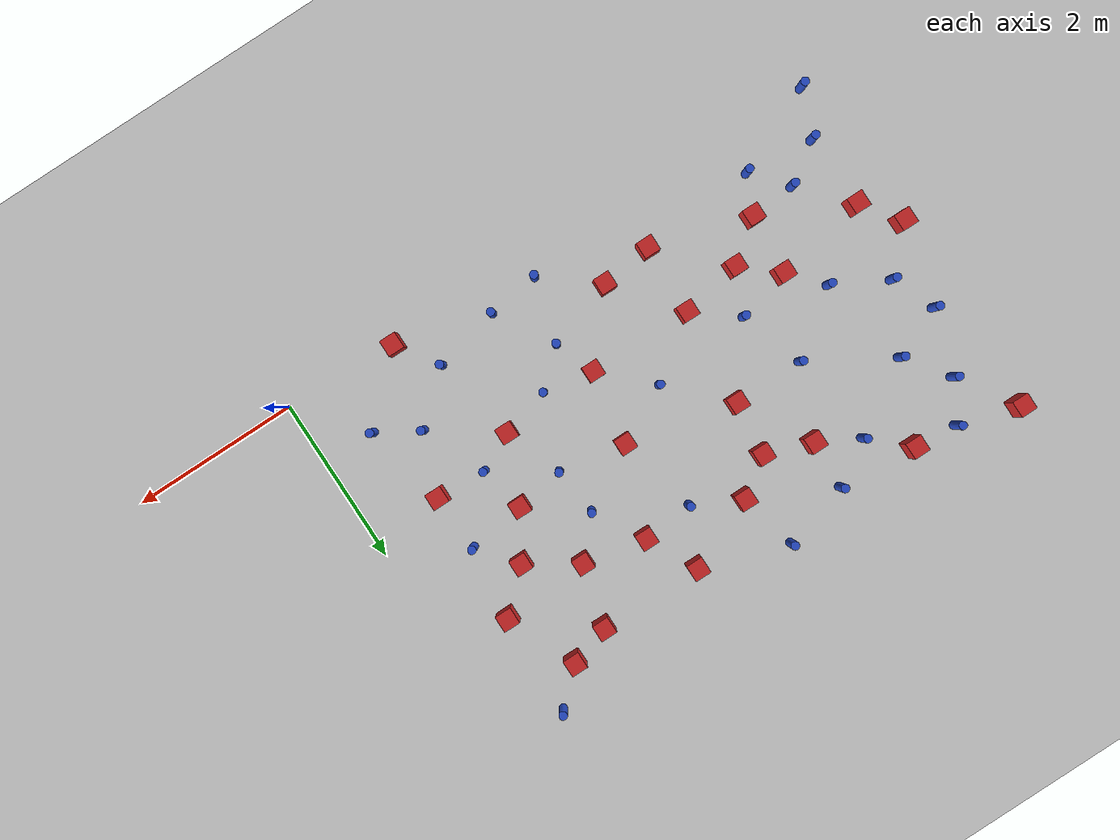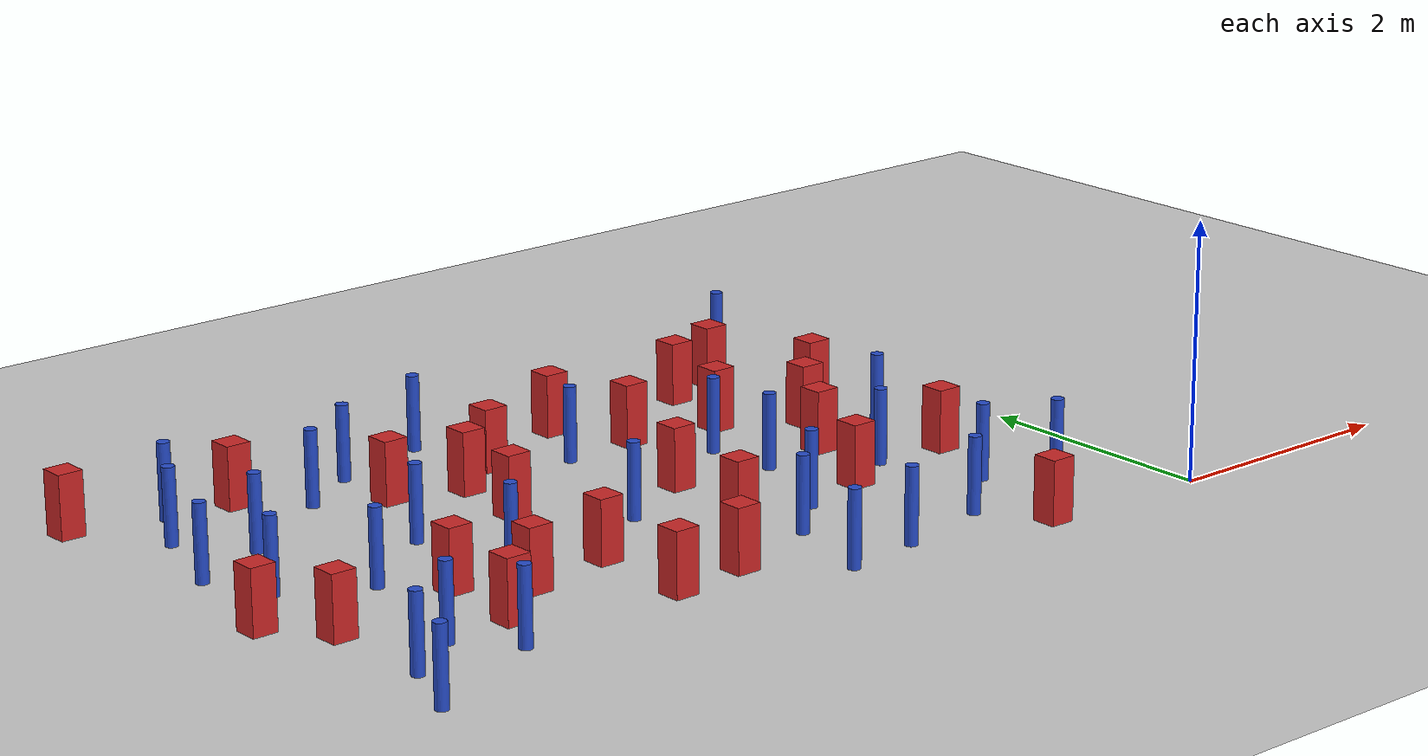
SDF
<sdf version="1.6">
 <world name="default">
  <model name="ground_plane">
   <static>1</static>
   <link name="link">
    <collision name="collision">
     <geometry><plane><normal>0 0 1</normal><size>100 100</size></plane></geometry>
     <surface><friction><ode><mu>100</mu><mu2>50</mu2></ode></friction></surface>
    </collision>
    <visual name="visual">
     <cast_shadows>0</cast_shadows>
     <geometry><plane><normal>0 0 1</normal><size>100 100</size></plane></geometry>
     <material>
      <ambient>1.0 1.0 1.0 1.0</ambient>
      <diffuse>0.8 0.8 0.8 1.0</diffuse>
      <specular>0.01 0.01 0.01 1.000000</specular>
     </material>
    </visual>
   </link>
  </model>
  <model name="pole_obstacle2">
   <static>true</static>
   <pose>-5.77807198783 0.60570814513 7.38925637345e-09 -8.47170692799e-08 1.24976765038e-08 -1.74513093018e-07</pose>
   <link name="link">
    <pose>0 0 0.3 0 -0 0</pose>
    <inertial>
     <mass>1</mass>
     <inertia><ixx>0.145833</ixx><ixy>0</ixy><ixz>0</ixz><iyy>0.145833</iyy><iyz>0</iyz><izz>0.125</izz></inertia>
    </inertial>
    <collision name="collision">
     <geometry><cylinder><radius>0.05</radius><length>.6</length></cylinder></geometry>
    </collision>
    <visual name="visual">
     <geometry><cylinder><radius>0.05</radius><length>.6</length></cylinder></geometry>
     <material>
      <script><name>Gazebo/Blue</name><uri>file://media/materials/scripts/gazebo.material</uri></script>
     </material>
    </visual>
   </link>
  </model>
  <model name="pole_obstacle5">
   <static>true</static>
   <pose>-6.08765010966 3.29022530019 7.38925637345e-09 -8.47170692798e-08 1.24976764937e-08 -1.74513093023e-07</pose>
   <link name="link">
    <pose>0 0 0.3 0 -0 0</pose>
    <inertial>
     <mass>1</mass>
     <inertia><ixx>0.145833</ixx><ixy>0</ixy><ixz>0</ixz><iyy>0.145833</iyy><iyz>0</iyz><izz>0.125</izz></inertia>
    </inertial>
    <collision name="collision">
     <geometry><cylinder><radius>0.05</radius><length>.6</length></cylinder></geometry>
    </collision>
    <visual name="visual">
     <geometry><cylinder><radius>0.05</radius><length>.6</length></cylinder></geometry>
     <material>
      <script><name>Gazebo/Blue</name><uri>file://media/materials/scripts/gazebo.material</uri></script>
     </material>
    </visual>
   </link>
  </model>
  <model name="square_post_obstacle6">
   <static>true</static>
   <pose>-6.60543335553 1.57570424143 1.91545236811e-07 -7.35059704564e-06 1.12565212e-07 2.39332434364e-05</pose>
   <link name="link">
    <pose>0 0 0.25 0 -0 0</pose>
    <inertial>
     <mass>100</mass>
     <inertia>
      <ixx>0.166667</ixx>
      <ixy>0</ixy>
      <ixz>0</ixz>
      <iyy>0.166667</iyy>
      <iyz>0</iyz>
      <izz>0.166667</izz>
     </inertia>
    </inertial>
    <collision name="collision"><geometry><box><size>.2 .2 .5</size></box></geometry></collision>
    <visual name="visual">
     <geometry><box><size>.2 .2 .5</size></box></geometry>
     <material>
      <script><name>Gazebo/Red</name><uri>file://media/materials/scripts/gazebo.material</uri></script>
     </material>
    </visual>
   </link>
  </model>
  <model name="square_post_obstacle7">
   <static>true</static>
   <pose>-5.49763663436 1.77760166691 1.91545236811e-07 -7.35059704564e-06 1.12565212e-07 2.39332434364e-05</pose>
   <link name="link">
    <pose>0 0 0.25 0 -0 0</pose>
    <inertial>
     <mass>100</mass>
     <inertia>
      <ixx>0.166667</ixx>
      <ixy>0</ixy>
      <ixz>0</ixz>
      <iyy>0.166667</iyy>
      <iyz>0</iyz>
      <izz>0.166667</izz>
     </inertia>
    </inertial>
    <collision name="collision"><geometry><box><size>.2 .2 .5</size></box></geometry></collision>
    <visual name="visual">
     <geometry><box><size>.2 .2 .5</size></box></geometry>
     <material>
      <script><name>Gazebo/Red</name><uri>file://media/materials/scripts/gazebo.material</uri></script>
     </material>
    </visual>
   </link>
  </model>
  <model name="square_post_obstacle14">
   <static>true</static>
   <pose>-1.38984037299 0.0658818609446 1.91545236811e-07 -7.35059704564e-06 1.12565212e-07 2.39332434364e-05</pose>
   <link name="link">
    <pose>0 0 0.25 0 -0 0</pose>
    <inertial>
     <mass>100</mass>
     <inertia>
      <ixx>0.166667</ixx>
      <ixy>0</ixy>
      <ixz>0</ixz>
      <iyy>0.166667</iyy>
      <iyz>0</iyz>
      <izz>0.166667</izz>
     </inertia>
    </inertial>
    <collision name="collision"><geometry><box><size>.2 .2 .5</size></box></geometry></collision>
    <visual name="visual">
     <geometry><box><size>.2 .2 .5</size></box></geometry>
     <material>
      <script><name>Gazebo/Red</name><uri>file://media/materials/scripts/gazebo.material</uri></script>
     </material>
    </visual>
   </link>
  </model>
  <model name="pole_obstacle19">
   <static>true</static>
   <pose>-0.739754047334 4.5538869779 7.38925637345e-09 -8.471706928e-08 1.24976765086e-08 -1.74513093015e-07</pose>
   <link name="link">
    <pose>0 0 0.3 0 -0 0</pose>
    <inertial>
     <mass>1</mass>
     <inertia><ixx>0.145833</ixx><ixy>0</ixy><ixz>0</ixz><iyy>0.145833</iyy><iyz>0</iyz><izz>0.125</izz></inertia>
    </inertial>
    <collision name="collision">
     <geometry><cylinder><radius>0.05</radius><length>.6</length></cylinder></geometry>
    </collision>
    <visual name="visual">
     <geometry><cylinder><radius>0.05</radius><length>.6</length></cylinder></geometry>
     <material>
      <script><name>Gazebo/Blue</name><uri>file://media/materials/scripts/gazebo.material</uri></script>
     </material>
    </visual>
   </link>
  </model>
  <model name="pole_obstacle22">
   <static>true</static>
   <pose>-2.50910660701 0.369215138219 7.38925637345e-09 -8.471706928e-08 1.24976765172e-08 -1.74513093013e-07</pose>
   <link name="link">
    <pose>0 0 0.3 0 -0 0</pose>
    <inertial>
     <mass>1</mass>
     <inertia><ixx>0.145833</ixx><ixy>0</ixy><ixz>0</ixz><iyy>0.145833</iyy><iyz>0</iyz><izz>0.125</izz></inertia>
    </inertial>
    <collision name="collision">
     <geometry><cylinder><radius>0.05</radius><length>.6</length></cylinder></geometry>
    </collision>
    <visual name="visual">
     <geometry><cylinder><radius>0.05</radius><length>.6</length></cylinder></geometry>
     <material>
      <script><name>Gazebo/Blue</name><uri>file://media/materials/scripts/gazebo.material</uri></script>
     </material>
    </visual>
   </link>
  </model>
  <model name="square_post_obstacle26">
   <static>true</static>
   <pose>-4.35366112073 1.55228933744 1.91545236811e-07 -7.35059704564e-06 1.12565212e-07 2.39332434364e-05</pose>
   <link name="link">
    <pose>0 0 0.25 0 -0 0</pose>
    <inertial>
     <mass>100</mass>
     <inertia>
      <ixx>0.166667</ixx>
      <ixy>0</ixy>
      <ixz>0</ixz>
      <iyy>0.166667</iyy>
      <iyz>0</iyz>
      <izz>0.166667</izz>
     </inertia>
    </inertial>
    <collision name="collision"><geometry><box><size>.2 .2 .5</size></box></geometry></collision>
    <visual name="visual">
     <geometry><box><size>.2 .2 .5</size></box></geometry>
     <material>
      <script><name>Gazebo/Red</name><uri>file://media/materials/scripts/gazebo.material</uri></script>
     </material>
    </visual>
   </link>
  </model>
  <model name="pole_obstacle42">
   <static>true</static>
   <pose>-1.46862716438 1.8106235944 7.38925637345e-09 -8.471706928e-08 1.24976765079e-08 -1.74513093017e-07</pose>
   <link name="link">
    <pose>0 0 0.3 0 -0 0</pose>
    <inertial>
     <mass>1</mass>
     <inertia><ixx>0.145833</ixx><ixy>0</ixy><ixz>0</ixz><iyy>0.145833</iyy><iyz>0</iyz><izz>0.125</izz></inertia>
    </inertial>
    <collision name="collision">
     <geometry><cylinder><radius>0.05</radius><length>.6</length></cylinder></geometry>
    </collision>
    <visual name="visual">
     <geometry><cylinder><radius>0.05</radius><length>.6</length></cylinder></geometry>
     <material>
      <script><name>Gazebo/Blue</name><uri>file://media/materials/scripts/gazebo.material</uri></script>
     </material>
    </visual>
   </link>
  </model>
  <model name="square_post_obstacle32">
   <static>true</static>
   <pose>-2.96354630982 2.41492185534 1.91545236811e-07 -7.35059704564e-06 1.12565212e-07 2.39332434364e-05</pose>
   <link name="link">
    <pose>0 0 0.25 0 -0 0</pose>
    <inertial>
     <mass>100</mass>
     <inertia>
      <ixx>0.166667</ixx>
      <ixy>0</ixy>
      <ixz>0</ixz>
      <iyy>0.166667</iyy>
      <iyz>0</iyz>
      <izz>0.166667</izz>
     </inertia>
    </inertial>
    <collision name="collision"><geometry><box><size>.2 .2 .5</size></box></geometry></collision>
    <visual name="visual">
     <geometry><box><size>.2 .2 .5</size></box></geometry>
     <material>
      <script><name>Gazebo/Red</name><uri>file://media/materials/scripts/gazebo.material</uri></script>
     </material>
    </visual>
   </link>
  </model>
  <model name="square_post_obstacle36">
   <static>true</static>
   <pose>-1.92101219446 1.59004297579 1.91545236811e-07 -7.35059704564e-06 1.12565212e-07 2.39332434364e-05</pose>
   <link name="link">
    <pose>0 0 0.25 0 -0 0</pose>
    <inertial>
     <mass>100</mass>
     <inertia>
      <ixx>0.166667</ixx>
      <ixy>0</ixy>
      <ixz>0</ixz>
      <iyy>0.166667</iyy>
      <iyz>0</iyz>
      <izz>0.166667</izz>
     </inertia>
    </inertial>
    <collision name="collision"><geometry><box><size>.2 .2 .5</size></box></geometry></collision>
    <visual name="visual">
     <geometry><box><size>.2 .2 .5</size></box></geometry>
     <material>
      <script><name>Gazebo/Red</name><uri>file://media/materials/scripts/gazebo.material</uri></script>
     </material>
    </visual>
   </link>
  </model>
  <model name="pole_obstacle56">
   <static>true</static>
   <pose>-3.64869601761 2.07074282816 7.38925637345e-09 -8.471706928e-08 1.24976765098e-08 -1.74513093016e-07</pose>
   <link name="link">
    <pose>0 0 0.3 0 -0 0</pose>
    <inertial>
     <mass>1</mass>
     <inertia><ixx>0.145833</ixx><ixy>0</ixy><ixz>0</ixz><iyy>0.145833</iyy><iyz>0</iyz><izz>0.125</izz></inertia>
    </inertial>
    <collision name="collision">
     <geometry><cylinder><radius>0.05</radius><length>.6</length></cylinder></geometry>
    </collision>
    <visual name="visual">
     <geometry><cylinder><radius>0.05</radius><length>.6</length></cylinder></geometry>
     <material>
      <script><name>Gazebo/Blue</name><uri>file://media/materials/scripts/gazebo.material</uri></script>
     </material>
    </visual>
   </link>
  </model>
  <model name="square_post_obstacle50">
   <static>true</static>
   <pose>-0.792399169564 3.33805368329 1.91545236811e-07 -7.35059704564e-06 1.12565212e-07 2.39332434364e-05</pose>
   <link name="link">
    <pose>0 0 0.25 0 -0 0</pose>
    <inertial>
     <mass>100</mass>
     <inertia>
      <ixx>0.166667</ixx>
      <ixy>0</ixy>
      <ixz>0</ixz>
      <iyy>0.166667</iyy>
      <iyz>0</iyz>
      <izz>0.166667</izz>
     </inertia>
    </inertial>
    <collision name="collision"><geometry><box><size>.2 .2 .5</size></box></geometry></collision>
    <visual name="visual">
     <geometry><box><size>.2 .2 .5</size></box></geometry>
     <material>
      <script><name>Gazebo/Red</name><uri>file://media/materials/scripts/gazebo.material</uri></script>
     </material>
    </visual>
   </link>
  </model>
  <model name="square_post_obstacle53">
   <static>true</static>
   <pose>-4.26588855383 2.71386507238 1.91545236811e-07 -7.35059704564e-06 1.12565212e-07 2.39332434364e-05</pose>
   <link name="link">
    <pose>0 0 0.25 0 -0 0</pose>
    <inertial>
     <mass>100</mass>
     <inertia>
      <ixx>0.166667</ixx>
      <ixy>0</ixy>
      <ixz>0</ixz>
      <iyy>0.166667</iyy>
      <iyz>0</iyz>
      <izz>0.166667</izz>
     </inertia>
    </inertial>
    <collision name="collision"><geometry><box><size>.2 .2 .5</size></box></geometry></collision>
    <visual name="visual">
     <geometry><box><size>.2 .2 .5</size></box></geometry>
     <material>
      <script><name>Gazebo/Red</name><uri>file://media/materials/scripts/gazebo.material</uri></script>
     </material>
    </visual>
   </link>
  </model>
  <model name="pole_obstacle70">
   <static>true</static>
   <pose>-3.13428237372 0.285618210002 7.38925637345e-09 -8.47170692795e-08 1.24976764757e-08 -1.74513093037e-07</pose>
   <link name="link">
    <pose>0 0 0.3 0 -0 0</pose>
    <inertial>
     <mass>1</mass>
     <inertia><ixx>0.145833</ixx><ixy>0</ixy><ixz>0</ixz><iyy>0.145833</iyy><iyz>0</iyz><izz>0.125</izz></inertia>
    </inertial>
    <collision name="collision">
     <geometry><cylinder><radius>0.05</radius><length>.6</length></cylinder></geometry>
    </collision>
    <visual name="visual">
     <geometry><cylinder><radius>0.05</radius><length>.6</length></cylinder></geometry>
     <material>
      <script><name>Gazebo/Blue</name><uri>file://media/materials/scripts/gazebo.material</uri></script>
     </material>
    </visual>
   </link>
  </model>
  <model name="pole_obstacle73">
   <static>true</static>
   <pose>-6.59530736487 0.691565759097 7.38925637345e-09 -8.47170692799e-08 1.24976765038e-08 -1.74513093018e-07</pose>
   <link name="link">
    <pose>0 0 0.3 0 -0 0</pose>
    <inertial>
     <mass>1</mass>
     <inertia><ixx>0.145833</ixx><ixy>0</ixy><ixz>0</ixz><iyy>0.145833</iyy><iyz>0</iyz><izz>0.125</izz></inertia>
    </inertial>
    <collision name="collision">
     <geometry><cylinder><radius>0.05</radius><length>.6</length></cylinder></geometry>
    </collision>
    <visual name="visual">
     <geometry><cylinder><radius>0.05</radius><length>.6</length></cylinder></geometry>
     <material>
      <script><name>Gazebo/Blue</name><uri>file://media/materials/scripts/gazebo.material</uri></script>
     </material>
    </visual>
   </link>
  </model>
  <model name="square_post_obstacle64">
   <static>true</static>
   <pose>-5.66660402705 4.21801074426 1.91545236811e-07 -7.35059704564e-06 1.12565212e-07 2.39332434364e-05</pose>
   <link name="link">
    <pose>0 0 0.25 0 -0 0</pose>
    <inertial>
     <mass>100</mass>
     <inertia>
      <ixx>0.166667</ixx>
      <ixy>0</ixy>
      <ixz>0</ixz>
      <iyy>0.166667</iyy>
      <iyz>0</iyz>
      <izz>0.166667</izz>
     </inertia>
    </inertial>
    <collision name="collision"><geometry><box><size>.2 .2 .5</size></box></geometry></collision>
    <visual name="visual">
     <geometry><box><size>.2 .2 .5</size></box></geometry>
     <material>
      <script><name>Gazebo/Red</name><uri>file://media/materials/scripts/gazebo.material</uri></script>
     </material>
    </visual>
   </link>
  </model>
  <model name="pole_obstacle84">
   <static>true</static>
   <pose>-3.18942020828 3.38870784038 7.38925637345e-09 -8.47170692798e-08 1.24976764939e-08 -1.74513093025e-07</pose>
   <link name="link">
    <pose>0 0 0.3 0 -0 0</pose>
    <inertial>
     <mass>1</mass>
     <inertia><ixx>0.145833</ixx><ixy>0</ixy><ixz>0</ixz><iyy>0.145833</iyy><iyz>0</iyz><izz>0.125</izz></inertia>
    </inertial>
    <collision name="collision">
     <geometry><cylinder><radius>0.05</radius><length>.6</length></cylinder></geometry>
    </collision>
    <visual name="visual">
     <geometry><cylinder><radius>0.05</radius><length>.6</length></cylinder></geometry>
     <material>
      <script><name>Gazebo/Blue</name><uri>file://media/materials/scripts/gazebo.material</uri></script>
     </material>
    </visual>
   </link>
  </model>
  <model name="pole_obstacle88">
   <static>true</static>
   <pose>-1.14249875865 1.05000706779 7.38925637345e-09 -8.471706928e-08 1.24976765079e-08 -1.74513093017e-07</pose>
   <link name="link">
    <pose>0 0 0.3 0 -0 0</pose>
    <inertial>
     <mass>1</mass>
     <inertia><ixx>0.145833</ixx><ixy>0</ixy><ixz>0</ixz><iyy>0.145833</iyy><iyz>0</iyz><izz>0.125</izz></inertia>
    </inertial>
    <collision name="collision">
     <geometry><cylinder><radius>0.05</radius><length>.6</length></cylinder></geometry>
    </collision>
    <visual name="visual">
     <geometry><cylinder><radius>0.05</radius><length>.6</length></cylinder></geometry>
     <material>
      <script><name>Gazebo/Blue</name><uri>file://media/materials/scripts/gazebo.material</uri></script>
     </material>
    </visual>
   </link>
  </model>
  <model name="square_post_obstacle84">
   <static>true</static>
   <pose>-3.74932623 3.6658657889 1.91545236811e-07 -7.35059704564e-06 1.12565212e-07 2.39332434364e-05</pose>
   <link name="link">
    <pose>0 0 0.25 0 -0 0</pose>
    <inertial>
     <mass>100</mass>
     <inertia>
      <ixx>0.166667</ixx>
      <ixy>0</ixy>
      <ixz>0</ixz>
      <iyy>0.166667</iyy>
      <iyz>0</iyz>
      <izz>0.166667</izz>
     </inertia>
    </inertial>
    <collision name="collision"><geometry><box><size>.2 .2 .5</size></box></geometry></collision>
    <visual name="visual">
     <geometry><box><size>.2 .2 .5</size></box></geometry>
     <material>
      <script><name>Gazebo/Red</name><uri>file://media/materials/scripts/gazebo.material</uri></script>
     </material>
    </visual>
   </link>
  </model>
  <model name="pole_obstacle93">
   <static>true</static>
   <pose>-3.91940424923 4.38075386573 7.38925637345e-09 -8.47170692798e-08 1.24976765033e-08 -1.74513093019e-07</pose>
   <link name="link">
    <pose>0 0 0.3 0 -0 0</pose>
    <inertial>
     <mass>1</mass>
     <inertia><ixx>0.145833</ixx><ixy>0</ixy><ixz>0</ixz><iyy>0.145833</iyy><iyz>0</iyz><izz>0.125</izz></inertia>
    </inertial>
    <collision name="collision">
     <geometry><cylinder><radius>0.05</radius><length>.6</length></cylinder></geometry>
    </collision>
    <visual name="visual">
     <geometry><cylinder><radius>0.05</radius><length>.6</length></cylinder></geometry>
     <material>
      <script><name>Gazebo/Blue</name><uri>file://media/materials/scripts/gazebo.material</uri></script>
     </material>
    </visual>
   </link>
  </model>
  <model name="pole_obstacle96">
   <static>true</static>
   <pose>-6.20147774646 4.27920501245 7.38925637345e-09 -8.47170692796e-08 1.24976764786e-08 -1.74513093032e-07</pose>
   <link name="link">
    <pose>0 0 0.3 0 -0 0</pose>
    <inertial>
     <mass>1</mass>
     <inertia><ixx>0.145833</ixx><ixy>0</ixy><ixz>0</ixz><iyy>0.145833</iyy><iyz>0</iyz><izz>0.125</izz></inertia>
    </inertial>
    <collision name="collision">
     <geometry><cylinder><radius>0.05</radius><length>.6</length></cylinder></geometry>
    </collision>
    <visual name="visual">
     <geometry><cylinder><radius>0.05</radius><length>.6</length></cylinder></geometry>
     <material>
      <script><name>Gazebo/Blue</name><uri>file://media/materials/scripts/gazebo.material</uri></script>
     </material>
    </visual>
   </link>
  </model>
  <model name="square_post_obstacle91">
   <static>true</static>
   <pose>-4.19094853529 3.3549880351 1.91545236811e-07 -7.35059704564e-06 1.12565212e-07 2.39332434364e-05</pose>
   <link name="link">
    <pose>0 0 0.25 0 -0 0</pose>
    <inertial>
     <mass>100</mass>
     <inertia>
      <ixx>0.166667</ixx>
      <ixy>0</ixy>
      <ixz>0</ixz>
      <iyy>0.166667</iyy>
      <iyz>0</iyz>
      <izz>0.166667</izz>
     </inertia>
    </inertial>
    <collision name="collision"><geometry><box><size>.2 .2 .5</size></box></geometry></collision>
    <visual name="visual">
     <geometry><box><size>.2 .2 .5</size></box></geometry>
     <material>
      <script><name>Gazebo/Red</name><uri>file://media/materials/scripts/gazebo.material</uri></script>
     </material>
    </visual>
   </link>
  </model>
  <model name="square_post_obstacle95">
   <static>true</static>
   <pose>-1.83732954425 3.27923519996 1.91545236811e-07 -7.35059704564e-06 1.12565212e-07 2.39332434364e-05</pose>
   <link name="link">
    <pose>0 0 0.25 0 -0 0</pose>
    <inertial>
     <mass>100</mass>
     <inertia>
      <ixx>0.166667</ixx>
      <ixy>0</ixy>
      <ixz>0</ixz>
      <iyy>0.166667</iyy>
      <iyz>0</iyz>
      <izz>0.166667</izz>
     </inertia>
    </inertial>
    <collision name="collision"><geometry><box><size>.2 .2 .5</size></box></geometry></collision>
    <visual name="visual">
     <geometry><box><size>.2 .2 .5</size></box></geometry>
     <material>
      <script><name>Gazebo/Red</name><uri>file://media/materials/scripts/gazebo.material</uri></script>
     </material>
    </visual>
   </link>
  </model>
  <model name="pole_obstacle105">
   <static>true</static>
   <pose>-5.85587552289 2.16621828822 7.38925637345e-09 -8.47170692798e-08 1.24976764937e-08 -1.74513093023e-07</pose>
   <link name="link">
    <pose>0 0 0.3 0 -0 0</pose>
    <inertial>
     <mass>1</mass>
     <inertia><ixx>0.145833</ixx><ixy>0</ixy><ixz>0</ixz><iyy>0.145833</iyy><iyz>0</iyz><izz>0.125</izz></inertia>
    </inertial>
    <collision name="collision">
     <geometry><cylinder><radius>0.05</radius><length>.6</length></cylinder></geometry>
    </collision>
    <visual name="visual">
     <geometry><cylinder><radius>0.05</radius><length>.6</length></cylinder></geometry>
     <material>
      <script><name>Gazebo/Blue</name><uri>file://media/materials/scripts/gazebo.material</uri></script>
     </material>
    </visual>
   </link>
  </model>
  <model name="square_post_obstacle103">
   <static>true</static>
   <pose>-3.75116687626 0.78982060252 1.91545236811e-07 -7.35059704564e-06 1.12565212e-07 2.39332434364e-05</pose>
   <link name="link">
    <pose>0 0 0.25 0 -0 0</pose>
    <inertial>
     <mass>100</mass>
     <inertia>
      <ixx>0.166667</ixx>
      <ixy>0</ixy>
      <ixz>0</ixz>
      <iyy>0.166667</iyy>
      <iyz>0</iyz>
      <izz>0.166667</izz>
     </inertia>
    </inertial>
    <collision name="collision"><geometry><box><size>.2 .2 .5</size></box></geometry></collision>
    <visual name="visual">
     <geometry><box><size>.2 .2 .5</size></box></geometry>
     <material>
      <script><name>Gazebo/Red</name><uri>file://media/materials/scripts/gazebo.material</uri></script>
     </material>
    </visual>
   </link>
  </model>
  <model name="pole_obstacle114">
   <static>true</static>
   <pose>-1.71668804016 0.546882850773 7.38925637345e-09 -8.47170692799e-08 1.24976765051e-08 -1.74513093017e-07</pose>
   <link name="link">
    <pose>0 0 0.3 0 -0 0</pose>
    <inertial>
     <mass>1</mass>
     <inertia><ixx>0.145833</ixx><ixy>0</ixy><ixz>0</ixz><iyy>0.145833</iyy><iyz>0</iyz><izz>0.125</izz></inertia>
    </inertial>
    <collision name="collision">
     <geometry><cylinder><radius>0.05</radius><length>.6</length></cylinder></geometry>
    </collision>
    <visual name="visual">
     <geometry><cylinder><radius>0.05</radius><length>.6</length></cylinder></geometry>
     <material>
      <script><name>Gazebo/Blue</name><uri>file://media/materials/scripts/gazebo.material</uri></script>
     </material>
    </visual>
   </link>
  </model>
  <model name="square_post_obstacle120">
   <static>true</static>
   <pose>-2.58289987133 3.43219896969 1.91545236811e-07 -7.35059704564e-06 1.12565212e-07 2.39332434364e-05</pose>
   <link name="link">
    <pose>0 0 0.25 0 -0 0</pose>
    <inertial>
     <mass>100</mass>
     <inertia>
      <ixx>0.166667</ixx>
      <ixy>0</ixy>
      <ixz>0</ixz>
      <iyy>0.166667</iyy>
      <iyz>0</iyz>
      <izz>0.166667</izz>
     </inertia>
    </inertial>
    <collision name="collision"><geometry><box><size>.2 .2 .5</size></box></geometry></collision>
    <visual name="visual">
     <geometry><box><size>.2 .2 .5</size></box></geometry>
     <material>
      <script><name>Gazebo/Red</name><uri>file://media/materials/scripts/gazebo.material</uri></script>
     </material>
    </visual>
   </link>
  </model>
  <model name="pole_obstacle120">
   <static>true</static>
   <pose>-4.73022950383 4.1516085806 7.38925637345e-09 -8.47170692796e-08 1.24976764786e-08 -1.74513093032e-07</pose>
   <link name="link">
    <pose>0 0 0.3 0 -0 0</pose>
    <inertial>
     <mass>1</mass>
     <inertia><ixx>0.145833</ixx><ixy>0</ixy><ixz>0</ixz><iyy>0.145833</iyy><iyz>0</iyz><izz>0.125</izz></inertia>
    </inertial>
    <collision name="collision">
     <geometry><cylinder><radius>0.05</radius><length>.6</length></cylinder></geometry>
    </collision>
    <visual name="visual">
     <geometry><cylinder><radius>0.05</radius><length>.6</length></cylinder></geometry>
     <material>
      <script><name>Gazebo/Blue</name><uri>file://media/materials/scripts/gazebo.material</uri></script>
     </material>
    </visual>
   </link>
  </model>
  <model name="pole_obstacle126">
   <static>true</static>
   <pose>-5.11704240103 2.71503313191 7.38925637345e-09 -8.47170692798e-08 1.24976764937e-08 -1.74513093023e-07</pose>
   <link name="link">
    <pose>0 0 0.3 0 -0 0</pose>
    <inertial>
     <mass>1</mass>
     <inertia><ixx>0.145833</ixx><ixy>0</ixy><ixz>0</ixz><iyy>0.145833</iyy><iyz>0</iyz><izz>0.125</izz></inertia>
    </inertial>
    <collision name="collision">
     <geometry><cylinder><radius>0.05</radius><length>.6</length></cylinder></geometry>
    </collision>
    <visual name="visual">
     <geometry><cylinder><radius>0.05</radius><length>.6</length></cylinder></geometry>
     <material>
      <script><name>Gazebo/Blue</name><uri>file://media/materials/scripts/gazebo.material</uri></script>
     </material>
    </visual>
   </link>
  </model>
  <model name="pole_obstacle128">
   <static>true</static>
   <pose>-4.86051580256 1.94545031526 7.38925637345e-09 -8.471706928e-08 1.24976765134e-08 -1.74513093015e-07</pose>
   <link name="link">
    <pose>0 0 0.3 0 -0 0</pose>
    <inertial>
     <mass>1</mass>
     <inertia><ixx>0.145833</ixx><ixy>0</ixy><ixz>0</ixz><iyy>0.145833</iyy><iyz>0</iyz><izz>0.125</izz></inertia>
    </inertial>
    <collision name="collision">
     <geometry><cylinder><radius>0.05</radius><length>.6</length></cylinder></geometry>
    </collision>
    <visual name="visual">
     <geometry><cylinder><radius>0.05</radius><length>.6</length></cylinder></geometry>
     <material>
      <script><name>Gazebo/Blue</name><uri>file://media/materials/scripts/gazebo.material</uri></script>
     </material>
    </visual>
   </link>
  </model>
  <model name="pole_obstacle129">
   <static>true</static>
   <pose>-5.23996920974 3.82475448565 7.38925637345e-09 -8.47170692798e-08 1.24976764937e-08 -1.74513093023e-07</pose>
   <link name="link">
    <pose>0 0 0.3 0 -0 0</pose>
    <inertial>
     <mass>1</mass>
     <inertia><ixx>0.145833</ixx><ixy>0</ixy><ixz>0</ixz><iyy>0.145833</iyy><iyz>0</iyz><izz>0.125</izz></inertia>
    </inertial>
    <collision name="collision">
     <geometry><cylinder><radius>0.05</radius><length>.6</length></cylinder></geometry>
    </collision>
    <visual name="visual">
     <geometry><cylinder><radius>0.05</radius><length>.6</length></cylinder></geometry>
     <material>
      <script><name>Gazebo/Blue</name><uri>file://media/materials/scripts/gazebo.material</uri></script>
     </material>
    </visual>
   </link>
  </model>
  <model name="square_post_obstacle126">
   <static>true</static>
   <pose>-4.37297759561 0.711838506518 1.91545236811e-07 -7.35059704564e-06 1.12565212e-07 2.39332434364e-05</pose>
   <link name="link">
    <pose>0 0 0.25 0 -0 0</pose>
    <inertial>
     <mass>100</mass>
     <inertia>
      <ixx>0.166667</ixx>
      <ixy>0</ixy>
      <ixz>0</ixz>
      <iyy>0.166667</iyy>
      <iyz>0</iyz>
      <izz>0.166667</izz>
     </inertia>
    </inertial>
    <collision name="collision"><geometry><box><size>.2 .2 .5</size></box></geometry></collision>
    <visual name="visual">
     <geometry><box><size>.2 .2 .5</size></box></geometry>
     <material>
      <script><name>Gazebo/Red</name><uri>file://media/materials/scripts/gazebo.material</uri></script>
     </material>
    </visual>
   </link>
  </model>
  <model name="pole_obstacle138">
   <static>true</static>
   <pose>-0.894518262549 2.46589532866 7.38925637345e-09 -8.47170692799e-08 1.2497676509e-08 -1.74513093016e-07</pose>
   <link name="link">
    <pose>0 0 0.3 0 -0 0</pose>
    <inertial>
     <mass>1</mass>
     <inertia><ixx>0.145833</ixx><ixy>0</ixy><ixz>0</ixz><iyy>0.145833</iyy><iyz>0</iyz><izz>0.125</izz></inertia>
    </inertial>
    <collision name="collision">
     <geometry><cylinder><radius>0.05</radius><length>.6</length></cylinder></geometry>
    </collision>
    <visual name="visual">
     <geometry><cylinder><radius>0.05</radius><length>.6</length></cylinder></geometry>
     <material>
      <script><name>Gazebo/Blue</name><uri>file://media/materials/scripts/gazebo.material</uri></script>
     </material>
    </visual>
   </link>
  </model>
  <model name="square_post_obstacle134">
   <static>true</static>
   <pose>-3.10816501489 1.53897304908 1.91545236811e-07 -7.35059704564e-06 1.12565212e-07 2.39332434364e-05</pose>
   <link name="link">
    <pose>0 0 0.25 0 -0 0</pose>
    <inertial>
     <mass>100</mass>
     <inertia>
      <ixx>0.166667</ixx>
      <ixy>0</ixy>
      <ixz>0</ixz>
      <iyy>0.166667</iyy>
      <iyz>0</iyz>
      <izz>0.166667</izz>
     </inertia>
    </inertial>
    <collision name="collision"><geometry><box><size>.2 .2 .5</size></box></geometry></collision>
    <visual name="visual">
     <geometry><box><size>.2 .2 .5</size></box></geometry>
     <material>
      <script><name>Gazebo/Red</name><uri>file://media/materials/scripts/gazebo.material</uri></script>
     </material>
    </visual>
   </link>
  </model>
  <model name="square_post_obstacle148">
   <static>true</static>
   <pose>-0.873998536915 1.77614807853 1.91545236811e-07 -7.35059704564e-06 1.12565212e-07 2.39332434364e-05</pose>
   <link name="link">
    <pose>0 0 0.25 0 -0 0</pose>
    <inertial>
     <mass>100</mass>
     <inertia>
      <ixx>0.166667</ixx>
      <ixy>0</ixy>
      <ixz>0</ixz>
      <iyy>0.166667</iyy>
      <iyz>0</iyz>
      <izz>0.166667</izz>
     </inertia>
    </inertial>
    <collision name="collision"><geometry><box><size>.2 .2 .5</size></box></geometry></collision>
    <visual name="visual">
     <geometry><box><size>.2 .2 .5</size></box></geometry>
     <material>
      <script><name>Gazebo/Red</name><uri>file://media/materials/scripts/gazebo.material</uri></script>
     </material>
    </visual>
   </link>
  </model>
  <model name="square_post_obstacle149">
   <static>true</static>
   <pose>-6.91517837999 4.4764411988 1.91545236811e-07 -7.35059704564e-06 1.12565212e-07 2.39332434364e-05</pose>
   <link name="link">
    <pose>0 0 0.25 0 -0 0</pose>
    <inertial>
     <mass>100</mass>
     <inertia>
      <ixx>0.166667</ixx>
      <ixy>0</ixy>
      <ixz>0</ixz>
      <iyy>0.166667</iyy>
      <iyz>0</iyz>
      <izz>0.166667</izz>
     </inertia>
    </inertial>
    <collision name="collision"><geometry><box><size>.2 .2 .5</size></box></geometry></collision>
    <visual name="visual">
     <geometry><box><size>.2 .2 .5</size></box></geometry>
     <material>
      <script><name>Gazebo/Red</name><uri>file://media/materials/scripts/gazebo.material</uri></script>
     </material>
    </visual>
   </link>
  </model>
  <model name="square_post_obstacle153">
   <static>true</static>
   <pose>-5.55670103246 1.05421772816 1.91545236811e-07 -7.35059704564e-06 1.12565212e-07 2.39332434364e-05</pose>
   <link name="link">
    <pose>0 0 0.25 0 -0 0</pose>
    <inertial>
     <mass>100</mass>
     <inertia>
      <ixx>0.166667</ixx>
      <ixy>0</ixy>
      <ixz>0</ixz>
      <iyy>0.166667</iyy>
      <iyz>0</iyz>
      <izz>0.166667</izz>
     </inertia>
    </inertial>
    <collision name="collision"><geometry><box><size>.2 .2 .5</size></box></geometry></collision>
    <visual name="visual">
     <geometry><box><size>.2 .2 .5</size></box></geometry>
     <material>
      <script><name>Gazebo/Red</name><uri>file://media/materials/scripts/gazebo.material</uri></script>
     </material>
    </visual>
   </link>
  </model>
  <model name="pole_obstacle166">
   <static>true</static>
   <pose>-0.651727215629 0.761975274657 7.38925637345e-09 -8.47170692799e-08 1.24976765008e-08 -1.7451309302e-07</pose>
   <link name="link">
    <pose>0 0 0.3 0 -0 0</pose>
    <inertial>
     <mass>1</mass>
     <inertia><ixx>0.145833</ixx><ixy>0</ixy><ixz>0</ixz><iyy>0.145833</iyy><iyz>0</iyz><izz>0.125</izz></inertia>
    </inertial>
    <collision name="collision">
     <geometry><cylinder><radius>0.05</radius><length>.6</length></cylinder></geometry>
    </collision>
    <visual name="visual">
     <geometry><cylinder><radius>0.05</radius><length>.6</length></cylinder></geometry>
     <material>
      <script><name>Gazebo/Blue</name><uri>file://media/materials/scripts/gazebo.material</uri></script>
     </material>
    </visual>
   </link>
  </model>
  <model name="square_post_obstacle174">
   <static>true</static>
   <pose>-5.08202801016 1.42019464898 1.91545236811e-07 -7.35059704564e-06 1.12565212e-07 2.39332434364e-05</pose>
   <link name="link">
    <pose>0 0 0.25 0 -0 0</pose>
    <inertial>
     <mass>100</mass>
     <inertia>
      <ixx>0.166667</ixx>
      <ixy>0</ixy>
      <ixz>0</ixz>
      <iyy>0.166667</iyy>
      <iyz>0</iyz>
      <izz>0.166667</izz>
     </inertia>
    </inertial>
    <collision name="collision"><geometry><box><size>.2 .2 .5</size></box></geometry></collision>
    <visual name="visual">
     <geometry><box><size>.2 .2 .5</size></box></geometry>
     <material>
      <script><name>Gazebo/Red</name><uri>file://media/materials/scripts/gazebo.material</uri></script>
     </material>
    </visual>
   </link>
  </model>
  <model name="pole_obstacle177">
   <static>true</static>
   <pose>-2.17122403707 2.27388934302 7.38925637345e-09 -8.47170692798e-08 1.24976764939e-08 -1.74513093025e-07</pose>
   <link name="link">
    <pose>0 0 0.3 0 -0 0</pose>
    <inertial>
     <mass>1</mass>
     <inertia><ixx>0.145833</ixx><ixy>0</ixy><ixz>0</ixz><iyy>0.145833</iyy><iyz>0</iyz><izz>0.125</izz></inertia>
    </inertial>
    <collision name="collision">
     <geometry><cylinder><radius>0.05</radius><length>.6</length></cylinder></geometry>
    </collision>
    <visual name="visual">
     <geometry><cylinder><radius>0.05</radius><length>.6</length></cylinder></geometry>
     <material>
      <script><name>Gazebo/Blue</name><uri>file://media/materials/scripts/gazebo.material</uri></script>
     </material>
    </visual>
   </link>
  </model>
  <model name="square_post_obstacle176">
   <static>true</static>
   <pose>-1.63985804595 4.01578325283 1.91545236811e-07 -7.35059704564e-06 1.12565212e-07 2.39332434364e-05</pose>
   <link name="link">
    <pose>0 0 0.25 0 -0 0</pose>
    <inertial>
     <mass>100</mass>
     <inertia>
      <ixx>0.166667</ixx>
      <ixy>0</ixy>
      <ixz>0</ixz>
      <iyy>0.166667</iyy>
      <iyz>0</iyz>
      <izz>0.166667</izz>
     </inertia>
    </inertial>
    <collision name="collision"><geometry><box><size>.2 .2 .5</size></box></geometry></collision>
    <visual name="visual">
     <geometry><box><size>.2 .2 .5</size></box></geometry>
     <material>
      <script><name>Gazebo/Red</name><uri>file://media/materials/scripts/gazebo.material</uri></script>
     </material>
    </visual>
   </link>
  </model>
  <model name="pole_obstacle180">
   <static>true</static>
   <pose>-2.50737772628 1.43223127911 7.38925637345e-09 -8.471706928e-08 1.24976765152e-08 -1.74513093012e-07</pose>
   <link name="link">
    <pose>0 0 0.3 0 -0 0</pose>
    <inertial>
     <mass>1</mass>
     <inertia><ixx>0.145833</ixx><ixy>0</ixy><ixz>0</ixz><iyy>0.145833</iyy><iyz>0</iyz><izz>0.125</izz></inertia>
    </inertial>
    <collision name="collision">
     <geometry><cylinder><radius>0.05</radius><length>.6</length></cylinder></geometry>
    </collision>
    <visual name="visual">
     <geometry><cylinder><radius>0.05</radius><length>.6</length></cylinder></geometry>
     <material>
      <script><name>Gazebo/Blue</name><uri>file://media/materials/scripts/gazebo.material</uri></script>
     </material>
    </visual>
   </link>
  </model>
  <model name="square_post_obstacle180">
   <static>true</static>
   <pose>-6.94403091459 2.01886720139 1.91545236811e-07 -7.35059704564e-06 1.12565212e-07 2.39332434364e-05</pose>
   <link name="link">
    <pose>0 0 0.25 0 -0 0</pose>
    <inertial>
     <mass>100</mass>
     <inertia>
      <ixx>0.166667</ixx>
      <ixy>0</ixy>
      <ixz>0</ixz>
      <iyy>0.166667</iyy>
      <iyz>0</iyz>
      <izz>0.166667</izz>
     </inertia>
    </inertial>
    <collision name="collision"><geometry><box><size>.2 .2 .5</size></box></geometry></collision>
    <visual name="visual">
     <geometry><box><size>.2 .2 .5</size></box></geometry>
     <material>
      <script><name>Gazebo/Red</name><uri>file://media/materials/scripts/gazebo.material</uri></script>
     </material>
    </visual>
   </link>
  </model>
  <model name="square_post_obstacle190">
   <static>true</static>
   <pose>-1.59015475902 2.36276774284 1.91545236811e-07 -7.35059704564e-06 1.12565212e-07 2.39332434364e-05</pose>
   <link name="link">
    <pose>0 0 0.25 0 -0 0</pose>
    <inertial>
     <mass>100</mass>
     <inertia>
      <ixx>0.166667</ixx>
      <ixy>0</ixy>
      <ixz>0</ixz>
      <iyy>0.166667</iyy>
      <iyz>0</iyz>
      <izz>0.166667</izz>
     </inertia>
    </inertial>
    <collision name="collision"><geometry><box><size>.2 .2 .5</size></box></geometry></collision>
    <visual name="visual">
     <geometry><box><size>.2 .2 .5</size></box></geometry>
     <material>
      <script><name>Gazebo/Red</name><uri>file://media/materials/scripts/gazebo.material</uri></script>
     </material>
    </visual>
   </link>
  </model>
  <model name="square_post_obstacle193">
   <static>true</static>
   <pose>-1.15413476067 4.1652135962 1.91545236811e-07 -7.35059704564e-06 1.12565212e-07 2.39332434364e-05</pose>
   <link name="link">
    <pose>0 0 0.25 0 -0 0</pose>
    <inertial>
     <mass>100</mass>
     <inertia>
      <ixx>0.166667</ixx>
      <ixy>0</ixy>
      <ixz>0</ixz>
      <iyy>0.166667</iyy>
      <iyz>0</iyz>
      <izz>0.166667</izz>
     </inertia>
    </inertial>
    <collision name="collision"><geometry><box><size>.2 .2 .5</size></box></geometry></collision>
    <visual name="visual">
     <geometry><box><size>.2 .2 .5</size></box></geometry>
     <material>
      <script><name>Gazebo/Red</name><uri>file://media/materials/scripts/gazebo.material</uri></script>
     </material>
    </visual>
   </link>
  </model>
  <model name="pole_obstacle188">
   <static>true</static>
   <pose>-6.71481182352 3.0290389539 7.38925637345e-09 -8.47170692798e-08 1.24976764937e-08 -1.74513093023e-07</pose>
   <link name="link">
    <pose>0 0 0.3 0 -0 0</pose>
    <inertial>
     <mass>1</mass>
     <inertia><ixx>0.145833</ixx><ixy>0</ixy><ixz>0</ixz><iyy>0.145833</iyy><iyz>0</iyz><izz>0.125</izz></inertia>
    </inertial>
    <collision name="collision">
     <geometry><cylinder><radius>0.05</radius><length>.6</length></cylinder></geometry>
    </collision>
    <visual name="visual">
     <geometry><cylinder><radius>0.05</radius><length>.6</length></cylinder></geometry>
     <material>
      <script><name>Gazebo/Blue</name><uri>file://media/materials/scripts/gazebo.material</uri></script>
     </material>
    </visual>
   </link>
  </model>
  <model name="pole_obstacle195">
   <static>true</static>
   <pose>-6.11819290245 1.01160167592 7.38925637345e-09 -8.47170692801e-08 1.24976765139e-08 -1.74513093014e-07</pose>
   <link name="link">
    <pose>0 0 0.3 0 -0 0</pose>
    <inertial>
     <mass>1</mass>
     <inertia><ixx>0.145833</ixx><ixy>0</ixy><ixz>0</ixz><iyy>0.145833</iyy><iyz>0</iyz><izz>0.125</izz></inertia>
    </inertial>
    <collision name="collision">
     <geometry><cylinder><radius>0.05</radius><length>.6</length></cylinder></geometry>
    </collision>
    <visual name="visual">
     <geometry><cylinder><radius>0.05</radius><length>.6</length></cylinder></geometry>
     <material>
      <script><name>Gazebo/Blue</name><uri>file://media/materials/scripts/gazebo.material</uri></script>
     </material>
    </visual>
   </link>
  </model>
  <model name="pole_obstacle204">
   <static>true</static>
   <pose>-6.81725100864 0.133133775044 7.38925637345e-09 -8.47170692801e-08 1.24976765186e-08 -1.74513093012e-07</pose>
   <link name="link">
    <pose>0 0 0.3 0 -0 0</pose>
    <inertial>
     <mass>1</mass>
     <inertia><ixx>0.145833</ixx><ixy>0</ixy><ixz>0</ixz><iyy>0.145833</iyy><iyz>0</iyz><izz>0.125</izz></inertia>
    </inertial>
    <collision name="collision">
     <geometry><cylinder><radius>0.05</radius><length>.6</length></cylinder></geometry>
    </collision>
    <visual name="visual">
     <geometry><cylinder><radius>0.05</radius><length>.6</length></cylinder></geometry>
     <material>
      <script><name>Gazebo/Blue</name><uri>file://media/materials/scripts/gazebo.material</uri></script>
     </material>
    </visual>
   </link>
  </model>
  <model name="pole_obstacle206">
   <static>true</static>
   <pose>-6.46664326273 3.80154629099 7.38925637345e-09 -8.47170692798e-08 1.24976764937e-08 -1.74513093023e-07</pose>
   <link name="link">
    <pose>0 0 0.3 0 -0 0</pose>
    <inertial>
     <mass>1</mass>
     <inertia><ixx>0.145833</ixx><ixy>0</ixy><ixz>0</ixz><iyy>0.145833</iyy><iyz>0</iyz><izz>0.125</izz></inertia>
    </inertial>
    <collision name="collision">
     <geometry><cylinder><radius>0.05</radius><length>.6</length></cylinder></geometry>
    </collision>
    <visual name="visual">
     <geometry><cylinder><radius>0.05</radius><length>.6</length></cylinder></geometry>
     <material>
      <script><name>Gazebo/Blue</name><uri>file://media/materials/scripts/gazebo.material</uri></script>
     </material>
    </visual>
   </link>
  </model>
  <model name="pole_obstacle208">
   <static>true</static>
   <pose>-2.92641392198 1.05525832868 7.38925637345e-09 -8.471706928e-08 1.24976765152e-08 -1.74513093012e-07</pose>
   <link name="link">
    <pose>0 0 0.3 0 -0 0</pose>
    <inertial>
     <mass>1</mass>
     <inertia><ixx>0.145833</ixx><ixy>0</ixy><ixz>0</ixz><iyy>0.145833</iyy><iyz>0</iyz><izz>0.125</izz></inertia>
    </inertial>
    <collision name="collision">
     <geometry><cylinder><radius>0.05</radius><length>.6</length></cylinder></geometry>
    </collision>
    <visual name="visual">
     <geometry><cylinder><radius>0.05</radius><length>.6</length></cylinder></geometry>
     <material>
      <script><name>Gazebo/Blue</name><uri>file://media/materials/scripts/gazebo.material</uri></script>
     </material>
    </visual>
   </link>
  </model>
  <model name="square_post_obstacle210">
   <static>true</static>
   <pose>-1.25385413497 2.90531816241 1.91545236811e-07 -7.35059704564e-06 1.12565212e-07 2.39332434364e-05</pose>
   <link name="link">
    <pose>0 0 0.25 0 -0 0</pose>
    <inertial>
     <mass>100</mass>
     <inertia>
      <ixx>0.166667</ixx>
      <ixy>0</ixy>
      <ixz>0</ixz>
      <iyy>0.166667</iyy>
      <iyz>0</iyz>
      <izz>0.166667</izz>
     </inertia>
    </inertial>
    <collision name="collision"><geometry><box><size>.2 .2 .5</size></box></geometry></collision>
    <visual name="visual">
     <geometry><box><size>.2 .2 .5</size></box></geometry>
     <material>
      <script><name>Gazebo/Red</name><uri>file://media/materials/scripts/gazebo.material</uri></script>
     </material>
    </visual>
   </link>
  </model>
  <model name="pole_obstacle211">
   <static>true</static>
   <pose>-6.48924611682 2.50476151653 7.38925637345e-09 -8.47170692798e-08 1.24976764937e-08 -1.74513093023e-07</pose>
   <link name="link">
    <pose>0 0 0.3 0 -0 0</pose>
    <inertial>
     <mass>1</mass>
     <inertia><ixx>0.145833</ixx><ixy>0</ixy><ixz>0</ixz><iyy>0.145833</iyy><iyz>0</iyz><izz>0.125</izz></inertia>
    </inertial>
    <collision name="collision">
     <geometry><cylinder><radius>0.05</radius><length>.6</length></cylinder></geometry>
    </collision>
    <visual name="visual">
     <geometry><cylinder><radius>0.05</radius><length>.6</length></cylinder></geometry>
     <material>
      <script><name>Gazebo/Blue</name><uri>file://media/materials/scripts/gazebo.material</uri></script>
     </material>
    </visual>
   </link>
  </model>
  <model name="pole_obstacle214">
   <static>true</static>
   <pose>-2.23186709291 2.84763077233 7.38925637345e-09 -8.47170692798e-08 1.24976764939e-08 -1.74513093025e-07</pose>
   <link name="link">
    <pose>0 0 0.3 0 -0 0</pose>
    <inertial>
     <mass>1</mass>
     <inertia><ixx>0.145833</ixx><ixy>0</ixy><ixz>0</ixz><iyy>0.145833</iyy><iyz>0</iyz><izz>0.125</izz></inertia>
    </inertial>
    <collision name="collision">
     <geometry><cylinder><radius>0.05</radius><length>.6</length></cylinder></geometry>
    </collision>
    <visual name="visual">
     <geometry><cylinder><radius>0.05</radius><length>.6</length></cylinder></geometry>
     <material>
      <script><name>Gazebo/Blue</name><uri>file://media/materials/scripts/gazebo.material</uri></script>
     </material>
    </visual>
   </link>
  </model>
  <model name="square_post_obstacle216">
   <static>true</static>
   <pose>-4.74709961081 3.55424849597 1.91545236811e-07 -7.35059704564e-06 1.12565212e-07 2.39332434364e-05</pose>
   <link name="link">
    <pose>0 0 0.25 0 -0 0</pose>
    <inertial>
     <mass>100</mass>
     <inertia>
      <ixx>0.166667</ixx>
      <ixy>0</ixy>
      <ixz>0</ixz>
      <iyy>0.166667</iyy>
      <iyz>0</iyz>
      <izz>0.166667</izz>
     </inertia>
    </inertial>
    <collision name="collision"><geometry><box><size>.2 .2 .5</size></box></geometry></collision>
    <visual name="visual">
     <geometry><box><size>.2 .2 .5</size></box></geometry>
     <material>
      <script><name>Gazebo/Red</name><uri>file://media/materials/scripts/gazebo.material</uri></script>
     </material>
    </visual>
   </link>
  </model>
  <model name="square_post_obstacle218">
   <static>true</static>
   <pose>-2.88290915851 4.02805161009 1.91545236811e-07 -7.35059704564e-06 1.12565212e-07 2.39332434364e-05</pose>
   <link name="link">
    <pose>0 0 0.25 0 -0 0</pose>
    <inertial>
     <mass>100</mass>
     <inertia>
      <ixx>0.166667</ixx>
      <ixy>0</ixy>
      <ixz>0</ixz>
      <iyy>0.166667</iyy>
      <iyz>0</iyz>
      <izz>0.166667</izz>
     </inertia>
    </inertial>
    <collision name="collision"><geometry><box><size>.2 .2 .5</size></box></geometry></collision>
    <visual name="visual">
     <geometry><box><size>.2 .2 .5</size></box></geometry>
     <material>
      <script><name>Gazebo/Red</name><uri>file://media/materials/scripts/gazebo.material</uri></script>
     </material>
    </visual>
   </link>
  </model>
 </world>
</sdf>
